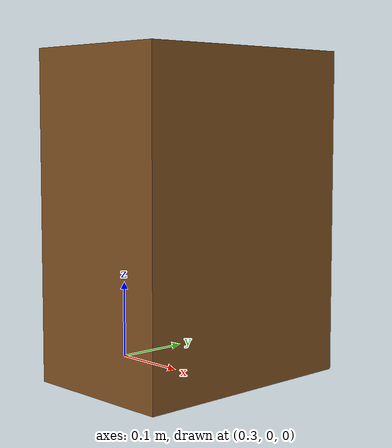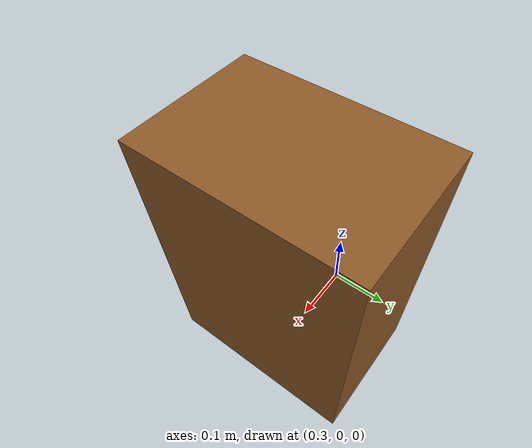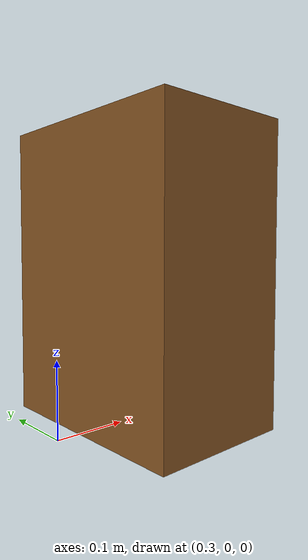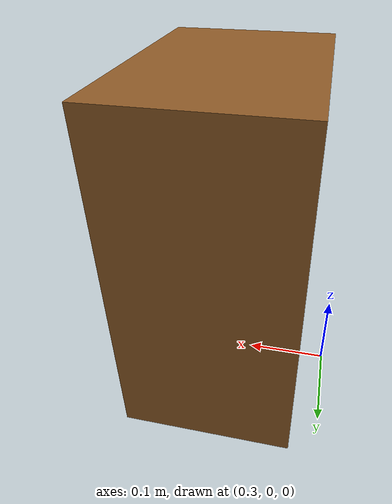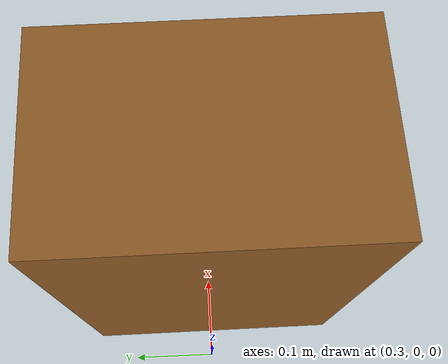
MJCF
<?xml version="1.0"?>
<mujoco model="suitcase">
  <worldbody>
    <body name="suitcase" pos="0.532087 -0.003498 0">
      <freejoint name="suitcase_root"/>
      <!-- Box 0.2 x 0.3 x 0.4 m (half-sizes 0.1/0.15/0.2), mass 2 kg; inertia at link origin -->
      <inertial mass="0.47" pos="-0.1 0 0.2" diaginertia="0.04167 0.03333 0.02167"/>

      <geom type="box" size="0.1 0.15 0.2" pos="-0.1 0.0 0.2" rgba="0.55 0.35 0.15 1"/>
    </body>
  </worldbody>
  <sensor>
    <framepos name="suitcase_pos" objtype="xbody" objname="suitcase"/>
    <framequat name="suitcase_quat" objtype="xbody" objname="suitcase"/>
  </sensor>
</mujoco>
